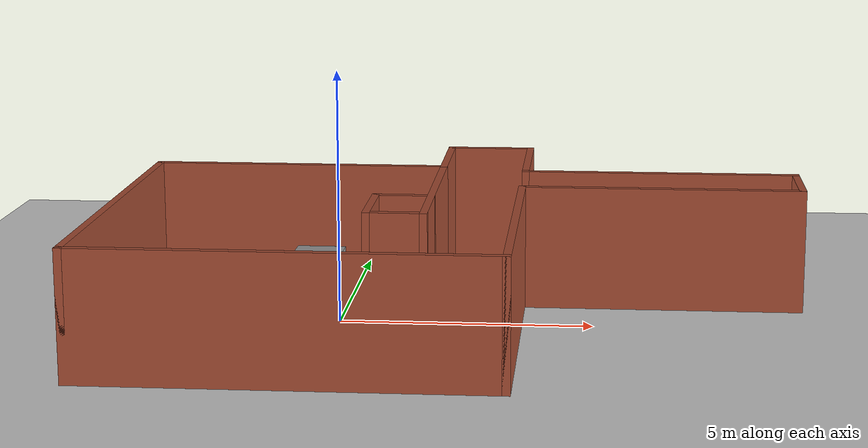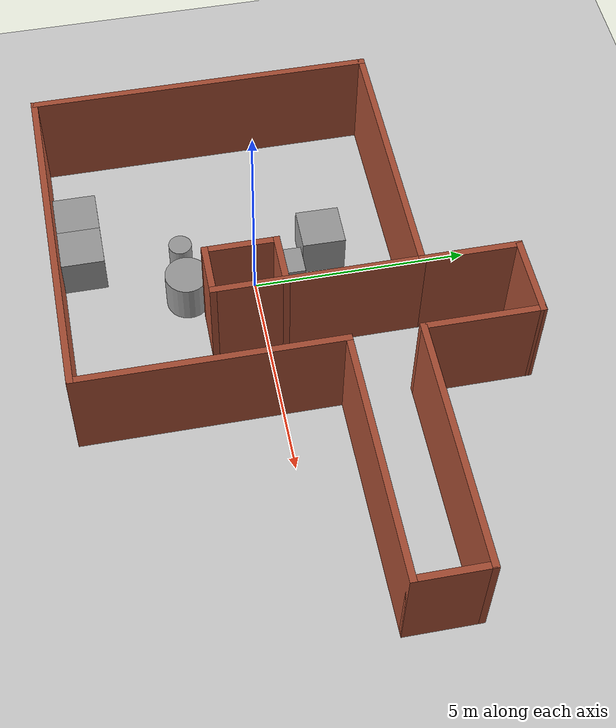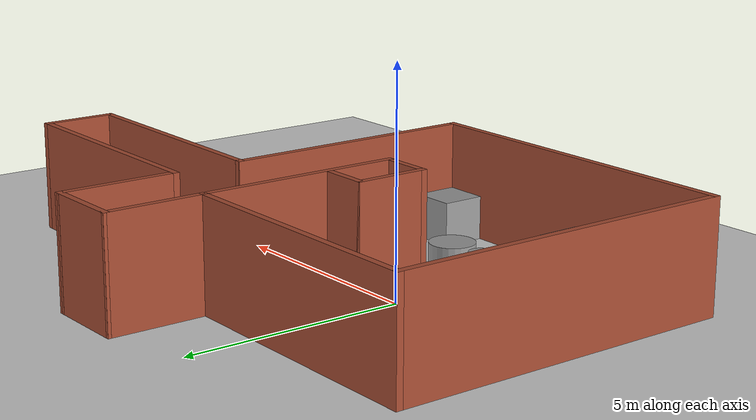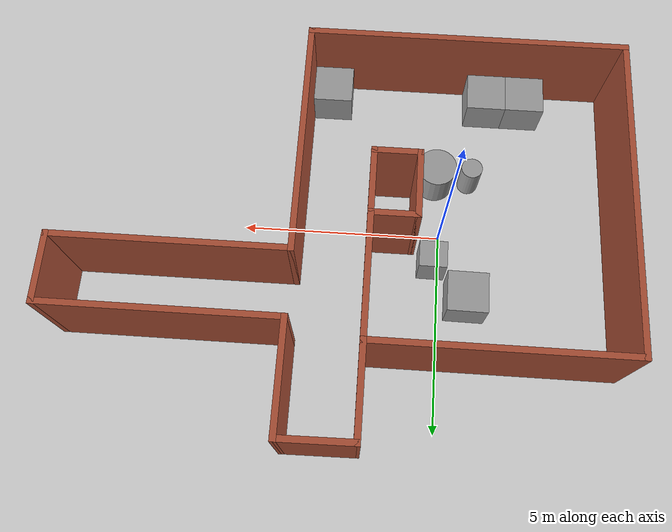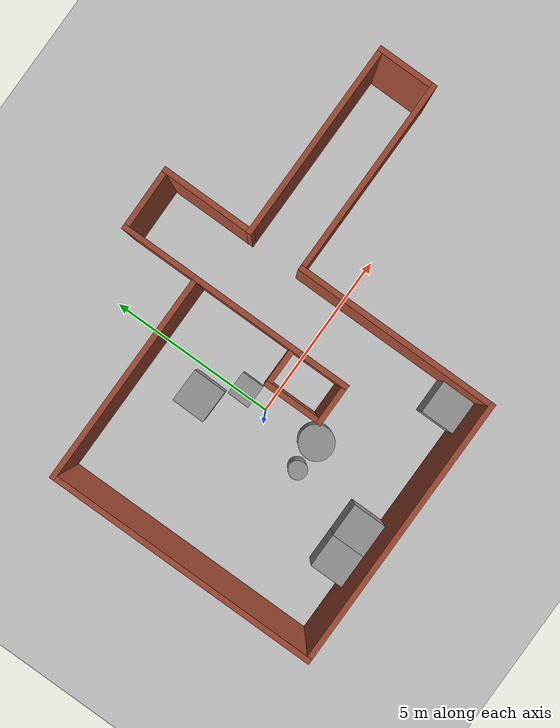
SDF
<sdf version="1.7">
 <world name="default">
  <light name="sun" type="directional">
   <pose>0 0 10 0 -0 0</pose>
   <diffuse>0.8 0.8 0.8 1</diffuse>
   <specular>0.2 0.2 0.2 1</specular>
   <attenuation>
    <range>1000</range>
    <constant>0.9</constant>
    <linear>0.01</linear>
    <quadratic>0.001</quadratic>
   </attenuation>
   <direction>-0.5 0.1 -0.9</direction>
   <spot><inner_angle>0</inner_angle><outer_angle>0</outer_angle><falloff>0</falloff></spot>
  </light>
  <model name="ground_plane">
   <static>1</static>
   <link name="link">
    <collision name="collision">
     <geometry><plane><normal>0 0 1</normal><size>100 100</size></plane></geometry>
     <surface>
      <contact><collide_bitmask>65535</collide_bitmask></contact>
      <friction><ode><mu>100</mu><mu2>50</mu2></ode></friction>
     </surface>
    </collision>
    <visual name="visual">
     <cast_shadows>0</cast_shadows>
     <geometry><plane><normal>0 0 1</normal><size>100 100</size></plane></geometry>
     <material>
      <script><uri>file://media/materials/scripts/gazebo.material</uri><name>Gazebo/Grey</name></script>
     </material>
    </visual>
   </link>
  </model>
  <gravity>0 0 -9.8</gravity>
  <magnetic_field>6e-06 2.3e-05 -4.2e-05</magnetic_field>
  <atmosphere type="adiabatic"/>
  <physics type="ode">
   <max_step_size>0.001</max_step_size>
   <real_time_factor>1</real_time_factor>
   <real_time_update_rate>1000</real_time_update_rate>
  </physics>
  <scene><ambient>0.4 0.4 0.4 1</ambient><background>0.7 0.7 0.7 1</background><shadows>1</shadows></scene>
  <spherical_coordinates>
   <surface_model>EARTH_WGS84</surface_model>
   <latitude_deg>0</latitude_deg>
   <longitude_deg>0</longitude_deg>
   <elevation>0</elevation>
   <heading_deg>0</heading_deg>
  </spherical_coordinates>
  <model name="SalaIrobo">
   <pose>2.40902 0.56695 0 0 -0 0</pose>
   <link name="Wall_31">
    <collision name="Wall_31_Collision">
     <geometry><box><size>4.75 0.15 2.5</size></box></geometry>
     <pose>0 0 1.25 0 -0 0</pose>
    </collision>
    <visual name="Wall_31_Visual">
     <pose>0 0 1.25 0 -0 0</pose>
     <geometry><box><size>4.75 0.15 2.5</size></box></geometry>
     <material>
      <script><uri>file://media/materials/scripts/gazebo.material</uri><name>Gazebo/Bricks</name></script>
      <ambient>1 1 1 1</ambient>
     </material>
     <meta><layer>0</layer></meta>
    </visual>
    <pose>-0.625 0.52457 0 0 -0 -1.5708</pose>
   </link>
   <link name="Wall_32">
    <collision name="Wall_32_Collision">
     <geometry><box><size>1.25 0.15 2.5</size></box></geometry>
     <pose>0 0 1.25 0 -0 0</pose>
    </collision>
    <visual name="Wall_32_Visual">
     <pose>0 0 1.25 0 -0 0</pose>
     <geometry><box><size>1.25 0.15 2.5</size></box></geometry>
     <material>
      <script><uri>file://media/materials/scripts/gazebo.material</uri><name>Gazebo/Bricks</name></script>
      <ambient>1 1 1 1</ambient>
     </material>
     <meta><layer>0</layer></meta>
    </visual>
    <pose>-1.175 -1.77543 0 0 -0 3.14159</pose>
   </link>
   <link name="Wall_33">
    <collision name="Wall_33_Collision">
     <geometry><box><size>1.75 0.15 2.5</size></box></geometry>
     <pose>0 0 1.25 0 -0 0</pose>
    </collision>
    <visual name="Wall_33_Visual">
     <pose>0 0 1.25 0 -0 0</pose>
     <geometry><box><size>1.75 0.15 2.5</size></box></geometry>
     <material>
      <script><uri>file://media/materials/scripts/gazebo.material</uri><name>Gazebo/Bricks</name></script>
      <ambient>1 1 1 1</ambient>
     </material>
     <meta><layer>0</layer></meta>
    </visual>
    <pose>-1.725 -0.97543 0 0 -0 1.5708</pose>
   </link>
   <link name="Wall_34">
    <collision name="Wall_34_Collision">
     <geometry><box><size>1.25 0.15 2.5</size></box></geometry>
     <pose>0 0 1.25 0 -0 0</pose>
    </collision>
    <visual name="Wall_34_Visual">
     <pose>0 0 1.25 0 -0 0</pose>
     <geometry><box><size>1.25 0.15 2.5</size></box></geometry>
     <material>
      <script><uri>file://media/materials/scripts/gazebo.material</uri><name>Gazebo/Bricks</name></script>
      <ambient>1 1 1 1</ambient>
     </material>
     <meta><layer>0</layer></meta>
    </visual>
    <pose>-1.175 -0.17543 0 0 -0 0</pose>
   </link>
   <link name="Wall_36">
    <collision name="Wall_36_Collision">
     <geometry><box><size>6.25 0.15 2.5</size></box></geometry>
     <pose>0 0 1.25 0 -0 0</pose>
    </collision>
    <visual name="Wall_36_Visual">
     <pose>0 0 1.25 0 -0 0</pose>
     <geometry><box><size>6.25 0.15 2.5</size></box></geometry>
     <material>
      <script><uri>file://media/materials/scripts/gazebo.material</uri><name>Gazebo/Bricks</name></script>
      <ambient>1 1 1 1</ambient>
     </material>
     <meta><layer>0</layer></meta>
    </visual>
    <pose>-3.675 2.82457 0 0 -0 3.14159</pose>
   </link>
   <link name="Wall_37">
    <collision name="Wall_37_Collision">
     <geometry><box><size>8 0.15 2.5</size></box></geometry>
     <pose>0 0 1.25 0 -0 0</pose>
    </collision>
    <visual name="Wall_37_Visual">
     <pose>0 0 1.25 0 -0 0</pose>
     <geometry><box><size>8 0.15 2.5</size></box></geometry>
     <material>
      <script><uri>file://media/materials/scripts/gazebo.material</uri><name>Gazebo/Bricks</name></script>
      <ambient>1 1 1 1</ambient>
     </material>
     <meta><layer>0</layer></meta>
    </visual>
    <pose>-6.725 -1.10043 0 0 -0 -1.5708</pose>
   </link>
   <link name="Wall_38">
    <collision name="Wall_38_Collision">
     <geometry><box><size>8 0.15 2.5</size></box></geometry>
     <pose>0 0 1.25 0 -0 0</pose>
    </collision>
    <visual name="Wall_38_Visual">
     <pose>0 0 1.25 0 -0 0</pose>
     <geometry><box><size>8 0.15 2.5</size></box></geometry>
     <material>
      <script><uri>file://media/materials/scripts/gazebo.material</uri><name>Gazebo/Bricks</name></script>
      <ambient>1 1 1 1</ambient>
     </material>
     <meta><layer>0</layer></meta>
    </visual>
    <pose>-2.8 -5.02543 0 0 -0 0</pose>
   </link>
   <link name="Wall_39">
    <collision name="Wall_39_Collision">
     <geometry><box><size>6 0.15 2.5</size></box></geometry>
     <pose>0 0 1.25 0 -0 0</pose>
    </collision>
    <visual name="Wall_39_Visual">
     <pose>0 0 1.25 0 -0 0</pose>
     <geometry><box><size>6 0.15 2.5</size></box></geometry>
     <material>
      <script><uri>file://media/materials/scripts/gazebo.material</uri><name>Gazebo/Bricks</name></script>
      <ambient>1 1 1 1</ambient>
     </material>
     <meta><layer>0</layer></meta>
    </visual>
    <pose>1.125 -2.10043 0 0 -0 1.5708</pose>
   </link>
   <link name="Wall_40">
    <collision name="Wall_40_Collision">
     <geometry><box><size>5.75 0.15 2.5</size></box></geometry>
     <pose>0 0 1.25 0 -0 0</pose>
    </collision>
    <visual name="Wall_40_Visual">
     <pose>0 0 1.25 0 -0 0</pose>
     <geometry><box><size>5.75 0.15 2.5</size></box></geometry>
     <material>
      <script><uri>file://media/materials/scripts/gazebo.material</uri><name>Gazebo/Bricks</name></script>
      <ambient>1 1 1 1</ambient>
     </material>
     <meta><layer>0</layer></meta>
    </visual>
    <pose>3.925 0.82457 0 0 -0 0</pose>
   </link>
   <link name="Wall_41">
    <collision name="Wall_41_Collision">
     <geometry><box><size>1.75 0.15 2.5</size></box></geometry>
     <pose>0 0 1.25 0 -0 0</pose>
    </collision>
    <visual name="Wall_41_Visual">
     <pose>0 0 1.25 0 -0 0</pose>
     <geometry><box><size>1.75 0.15 2.5</size></box></geometry>
     <material>
      <script><uri>file://media/materials/scripts/gazebo.material</uri><name>Gazebo/Bricks</name></script>
      <ambient>1 1 1 1</ambient>
     </material>
     <meta><layer>0</layer></meta>
    </visual>
    <pose>6.725 1.62457 0 0 -0 1.5708</pose>
   </link>
   <link name="Wall_42">
    <collision name="Wall_42_Collision">
     <geometry><box><size>5.75 0.15 2.5</size></box></geometry>
     <pose>0 0 1.25 0 -0 0</pose>
    </collision>
    <visual name="Wall_42_Visual">
     <pose>0 0 1.25 0 -0 0</pose>
     <geometry><box><size>5.75 0.15 2.5</size></box></geometry>
     <material>
      <script><uri>file://media/materials/scripts/gazebo.material</uri><name>Gazebo/Bricks</name></script>
      <ambient>1 1 1 1</ambient>
     </material>
     <meta><layer>0</layer></meta>
    </visual>
    <pose>3.925 2.42457 0 0 -0 3.14159</pose>
   </link>
   <link name="Wall_46">
    <collision name="Wall_46_Collision">
     <geometry><box><size>2.3298 0.15 2.5</size></box></geometry>
     <pose>0 0 1.25 0 -0 0</pose>
    </collision>
    <visual name="Wall_46_Visual">
     <pose>0 0 1.25 0 -0 0</pose>
     <geometry><box><size>2.3298 0.15 2.5</size></box></geometry>
     <material>
      <script><uri>file://media/materials/scripts/gazebo.material</uri><name>Gazebo/Bricks</name></script>
      <ambient>1 1 1 1</ambient>
     </material>
     <meta><layer>0</layer></meta>
    </visual>
    <pose>-0.625 3.91447 0 0 -0 1.5708</pose>
   </link>
   <link name="Wall_50">
    <collision name="Wall_50_Collision">
     <geometry><box><size>2.75 0.15 2.5</size></box></geometry>
     <pose>0 0 1.25 0 -0 0</pose>
    </collision>
    <visual name="Wall_50_Visual">
     <pose>0 0 1.25 0 -0 0</pose>
     <geometry><box><size>2.75 0.15 2.5</size></box></geometry>
     <material>
      <script><uri>file://media/materials/scripts/gazebo.material</uri><name>Gazebo/Bricks</name></script>
      <ambient>1 1 1 1</ambient>
     </material>
     <meta><layer>0</layer></meta>
    </visual>
    <pose>1.125 3.72457 0 0 -0 1.5708</pose>
   </link>
   <link name="Wall_51">
    <collision name="Wall_51_Collision">
     <geometry><box><size>1.90012 0.15 2.5</size></box></geometry>
     <pose>0 0 1.25 0 -0 0</pose>
    </collision>
    <visual name="Wall_51_Visual">
     <pose>0 0 1.25 0 -0 0</pose>
     <geometry><box><size>1.90012 0.15 2.5</size></box></geometry>
     <material>
      <script><uri>file://media/materials/scripts/gazebo.material</uri><name>Gazebo/Bricks</name></script>
      <ambient>1 1 1 1</ambient>
     </material>
     <meta><layer>0</layer></meta>
    </visual>
    <pose>0.25 5.01447 0 0 -0 -3.13005</pose>
   </link>
   <static>1</static>
  </model>
  <model name="unit_box_1">
   <pose>-2.0935 -3.88348 0.499995 1e-05 0 1e-06</pose>
   <link name="link">
    <inertial>
     <mass>1</mass>
     <inertia>
      <ixx>0.166667</ixx>
      <ixy>0</ixy>
      <ixz>0</ixz>
      <iyy>0.166667</iyy>
      <iyz>0</iyz>
      <izz>0.166667</izz>
     </inertia>
    </inertial>
    <collision name="collision"><geometry><box><size>1 1 1</size></box></geometry></collision>
    <visual name="visual">
     <geometry><box><size>1 1 1</size></box></geometry>
     <material>
      <script><name>Gazebo/Grey</name><uri>file://media/materials/scripts/gazebo.material</uri></script>
     </material>
    </visual>
   </link>
  </model>
  <model name="unit_box_2">
   <pose>-1.09349 -3.88348 0.5 1e-06 -0 0</pose>
   <link name="link">
    <inertial>
     <mass>1</mass>
     <inertia>
      <ixx>0.166667</ixx>
      <ixy>0</ixy>
      <ixz>0</ixz>
      <iyy>0.166667</iyy>
      <iyz>0</iyz>
      <izz>0.166667</izz>
     </inertia>
    </inertial>
    <collision name="collision"><geometry><box><size>1 1 1</size></box></geometry></collision>
    <visual name="visual">
     <geometry><box><size>1 1 1</size></box></geometry>
     <material>
      <script><name>Gazebo/Grey</name><uri>file://media/materials/scripts/gazebo.material</uri></script>
     </material>
    </visual>
   </link>
  </model>
  <model name="unit_cylinder">
   <pose>0.142728 -1.59387 0.499995 -5e-06 2e-06 -0.065545</pose>
   <link name="link">
    <inertial>
     <mass>1</mass>
     <inertia><ixx>0.145833</ixx><ixy>0</ixy><ixz>0</ixz><iyy>0.145833</iyy><iyz>0</iyz><izz>0.125</izz></inertia>
    </inertial>
    <collision name="collision">
     <geometry><cylinder><radius>0.5</radius><length>1</length></cylinder></geometry>
    </collision>
    <visual name="visual">
     <geometry><cylinder><radius>0.5</radius><length>1</length></cylinder></geometry>
     <material>
      <script><name>Gazebo/Grey</name><uri>file://media/materials/scripts/gazebo.material</uri></script>
     </material>
    </visual>
   </link>
  </model>
  <model name="unit_box">
   <pose>2.95431 -3.88348 0.499995 1e-05 0 1e-06</pose>
   <link name="link">
    <inertial>
     <mass>1</mass>
     <inertia>
      <ixx>0.166667</ixx>
      <ixy>0</ixy>
      <ixz>0</ixz>
      <iyy>0.166667</iyy>
      <iyz>0</iyz>
      <izz>0.166667</izz>
     </inertia>
    </inertial>
    <collision name="collision"><geometry><box><size>1 1 1</size></box></geometry></collision>
    <visual name="visual">
     <geometry><box><size>1 1 1</size></box></geometry>
     <material>
      <script><name>Gazebo/Grey</name><uri>file://media/materials/scripts/gazebo.material</uri></script>
     </material>
    </visual>
   </link>
  </model>
  <model name="unit_box_0">
   <pose>-0.677728 1.68073 0.499995 -1e-05 -0 -0.011588</pose>
   <link name="link">
    <inertial>
     <mass>1</mass>
     <inertia>
      <ixx>0.166667</ixx>
      <ixy>0</ixy>
      <ixz>0</ixz>
      <iyy>0.166667</iyy>
      <iyz>0</iyz>
      <izz>0.166667</izz>
     </inertia>
    </inertial>
    <collision name="collision"><geometry><box><size>1 1 1</size></box></geometry></collision>
    <visual name="visual">
     <geometry><box><size>1 1 1</size></box></geometry>
     <material>
      <script><name>Gazebo/Grey</name><uri>file://media/materials/scripts/gazebo.material</uri></script>
     </material>
    </visual>
   </link>
  </model>
  <model name="unit_cylinder_0">
   <pose>-0.740522 -1.61393 0.499992 1e-06 -1e-06 0</pose>
   <link name="link">
    <inertial>
     <mass>1</mass>
     <inertia><ixx>0.145833</ixx><ixy>0</ixy><ixz>0</ixz><iyy>0.145833</iyy><iyz>0</iyz><izz>0.125</izz></inertia>
    </inertial>
    <collision name="collision">
     <geometry><cylinder><radius>0.266892</radius><length>1</length></cylinder></geometry>
    </collision>
    <visual name="visual">
     <geometry><cylinder><radius>0.266892</radius><length>1</length></cylinder></geometry>
     <material>
      <script><name>Gazebo/Grey</name><uri>file://media/materials/scripts/gazebo.material</uri></script>
     </material>
    </visual>
   </link>
  </model>
  <model name="unit_box_3">
   <pose>0.180556 0.767425 0.499995 5e-06 8e-06 -0.010383</pose>
   <link name="link">
    <inertial>
     <mass>1</mass>
     <inertia>
      <ixx>0.166667</ixx>
      <ixy>0</ixy>
      <ixz>0</ixz>
      <iyy>0.166667</iyy>
      <iyz>0</iyz>
      <izz>0.166667</izz>
     </inertia>
    </inertial>
    <collision name="collision"><geometry><box><size>0.691021 0.668152 1</size></box></geometry></collision>
    <visual name="visual">
     <geometry><box><size>0.691021 0.668152 1</size></box></geometry>
     <material>
      <script><name>Gazebo/Grey</name><uri>file://media/materials/scripts/gazebo.material</uri></script>
     </material>
    </visual>
   </link>
  </model>
 </world>
</sdf>
